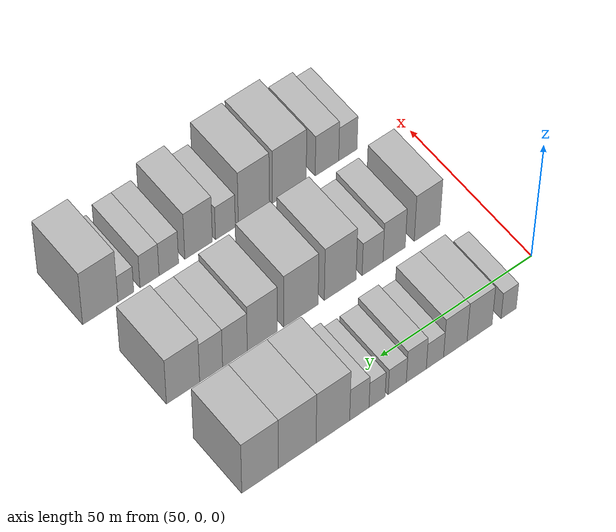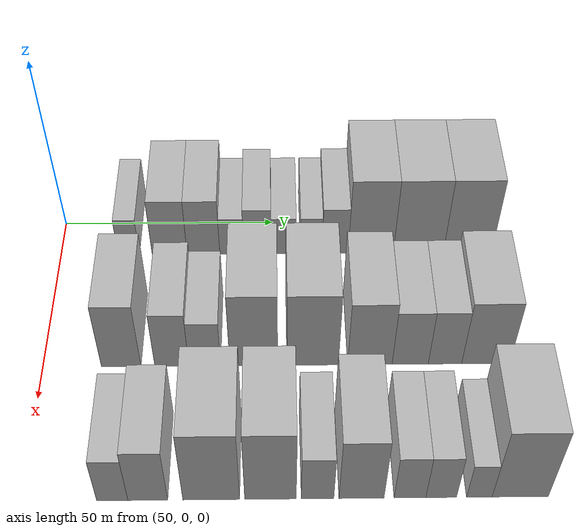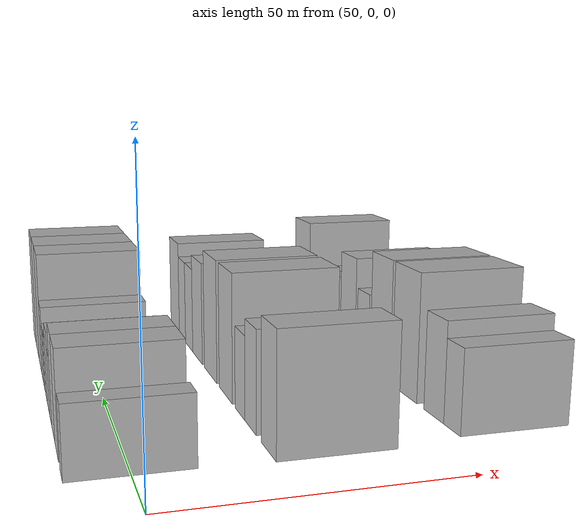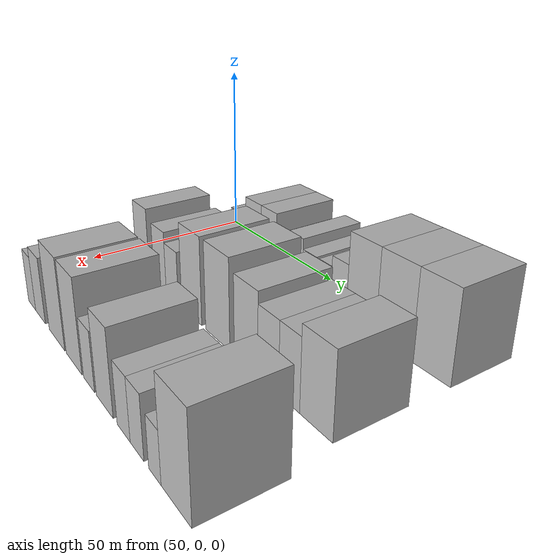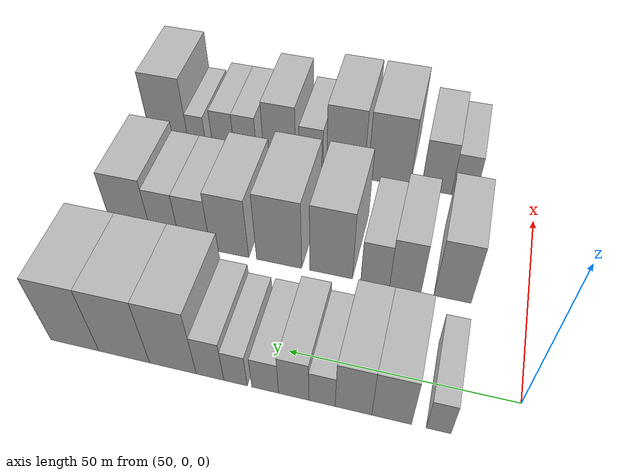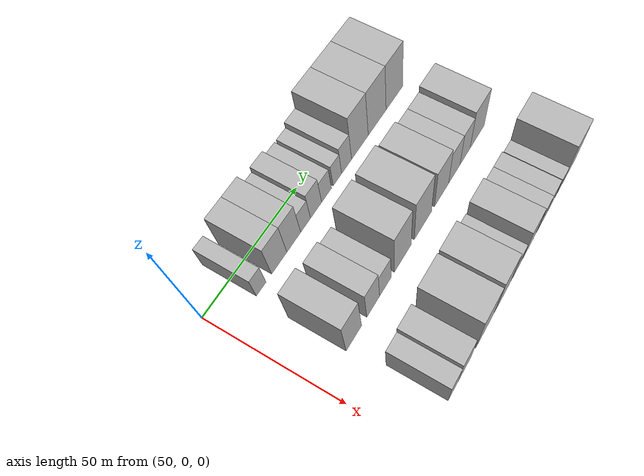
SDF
<sdf version="1.6">
 <world name="default">
  <model name="building_39">
   <static>1</static>
   <pose>50.0000 16.0215 0 0.000000 0.000000 0.000000</pose>
   <link name="link">
    <pose>0 0 6.00 0 0 0</pose>
    <collision name="collision"><geometry><box><size>20.0000 5.0427 12.0000</size></box></geometry></collision>
    <visual name="visual">
     <cast_shadows>0</cast_shadows>
     <geometry><box><size>20.0000 5.0427 12.0000</size></box></geometry>
     <material>
      <script>
       <uri>model://HANNAS_wall/materials/scripts</uri>
       <uri>model://HANNAS_wall/materials/textures</uri>
       <name>vrc/HANNAS_wall</name>
      </script>
     </material>
    </visual>
   </link>
  </model>
  <model name="building_40">
   <static>1</static>
   <pose>50.0000 25.6742 0 0.000000 0.000000 0.000000</pose>
   <link name="link">
    <pose>0 0 9.00 0 0 0</pose>
    <collision name="collision"><geometry><box><size>20.0000 8.2626 18.0000</size></box></geometry></collision>
    <visual name="visual">
     <cast_shadows>0</cast_shadows>
     <geometry><box><size>20.0000 8.2626 18.0000</size></box></geometry>
     <material>
      <script>
       <uri>model://HANNAS_wall/materials/scripts</uri>
       <uri>model://HANNAS_wall/materials/textures</uri>
       <name>vrc/HANNAS_wall</name>
      </script>
     </material>
    </visual>
   </link>
  </model>
  <model name="building_41">
   <static>1</static>
   <pose>50.0000 33.6685 0 0.000000 0.000000 0.000000</pose>
   <link name="link">
    <pose>0 0 9.00 0 0 0</pose>
    <collision name="collision"><geometry><box><size>20.0000 7.7261 18.0000</size></box></geometry></collision>
    <visual name="visual">
     <cast_shadows>0</cast_shadows>
     <geometry><box><size>20.0000 7.7261 18.0000</size></box></geometry>
     <material>
      <script>
       <uri>model://HANNAS_wall/materials/scripts</uri>
       <uri>model://HANNAS_wall/materials/textures</uri>
       <name>vrc/HANNAS_wall</name>
      </script>
     </material>
    </visual>
   </link>
  </model>
  <model name="building_42">
   <static>1</static>
   <pose>50.0000 40.3469 0 0.000000 0.000000 0.000000</pose>
   <link name="link">
    <pose>0 0 6.00 0 0 0</pose>
    <collision name="collision"><geometry><box><size>20.0000 5.6309 12.0000</size></box></geometry></collision>
    <visual name="visual">
     <cast_shadows>0</cast_shadows>
     <geometry><box><size>20.0000 5.6309 12.0000</size></box></geometry>
     <material>
      <script>
       <uri>model://HANNAS_wall/materials/scripts</uri>
       <uri>model://HANNAS_wall/materials/textures</uri>
       <name>vrc/HANNAS_wall</name>
      </script>
     </material>
    </visual>
   </link>
  </model>
  <model name="building_43">
   <static>1</static>
   <pose>50.0000 46.4222 0 0.000000 0.000000 0.000000</pose>
   <link name="link">
    <pose>0 0 7.50 0 0 0</pose>
    <collision name="collision"><geometry><box><size>20.0000 6.5196 15.0000</size></box></geometry></collision>
    <visual name="visual">
     <cast_shadows>0</cast_shadows>
     <geometry><box><size>20.0000 6.5196 15.0000</size></box></geometry>
     <material>
      <script>
       <uri>model://HANNAS_wall/materials/scripts</uri>
       <uri>model://HANNAS_wall/materials/textures</uri>
       <name>vrc/HANNAS_wall</name>
      </script>
     </material>
    </visual>
   </link>
  </model>
  <model name="building_44">
   <static>1</static>
   <pose>50.0000 52.6147 0 0.000000 0.000000 0.000000</pose>
   <link name="link">
    <pose>0 0 6.00 0 0 0</pose>
    <collision name="collision"><geometry><box><size>20.0000 5.8656 12.0000</size></box></geometry></collision>
    <visual name="visual">
     <cast_shadows>0</cast_shadows>
     <geometry><box><size>20.0000 5.8656 12.0000</size></box></geometry>
     <material>
      <script>
       <uri>model://HANNAS_wall/materials/scripts</uri>
       <uri>model://HANNAS_wall/materials/textures</uri>
       <name>vrc/HANNAS_wall</name>
      </script>
     </material>
    </visual>
   </link>
  </model>
  <model name="building_45">
   <static>1</static>
   <pose>50.0000 59.1425 0 0.000000 0.000000 0.000000</pose>
   <link name="link">
    <pose>0 0 6.00 0 0 0</pose>
    <collision name="collision"><geometry><box><size>20.0000 5.1899 12.0000</size></box></geometry></collision>
    <visual name="visual">
     <cast_shadows>0</cast_shadows>
     <geometry><box><size>20.0000 5.1899 12.0000</size></box></geometry>
     <material>
      <script>
       <uri>model://HANNAS_wall/materials/scripts</uri>
       <uri>model://HANNAS_wall/materials/textures</uri>
       <name>vrc/HANNAS_wall</name>
      </script>
     </material>
    </visual>
   </link>
  </model>
  <model name="building_46">
   <static>1</static>
   <pose>50.0000 64.8437 0 0.000000 0.000000 0.000000</pose>
   <link name="link">
    <pose>0 0 7.50 0 0 0</pose>
    <collision name="collision"><geometry><box><size>20.0000 6.2126 15.0000</size></box></geometry></collision>
    <visual name="visual">
     <cast_shadows>0</cast_shadows>
     <geometry><box><size>20.0000 6.2126 15.0000</size></box></geometry>
     <material>
      <script>
       <uri>model://HANNAS_wall/materials/scripts</uri>
       <uri>model://HANNAS_wall/materials/textures</uri>
       <name>vrc/HANNAS_wall</name>
      </script>
     </material>
    </visual>
   </link>
  </model>
  <model name="building_47">
   <static>1</static>
   <pose>50.0000 73.2977 0 0.000000 0.000000 0.000000</pose>
   <link name="link">
    <pose>0 0 12.00 0 0 0</pose>
    <collision name="collision"><geometry><box><size>20.0000 10.6954 24.0000</size></box></geometry></collision>
    <visual name="visual">
     <cast_shadows>0</cast_shadows>
     <geometry><box><size>20.0000 10.6954 24.0000</size></box></geometry>
     <material>
      <script>
       <uri>model://HANNAS_wall/materials/scripts</uri>
       <uri>model://HANNAS_wall/materials/textures</uri>
       <name>vrc/HANNAS_wall</name>
      </script>
     </material>
    </visual>
   </link>
  </model>
  <model name="building_48">
   <static>1</static>
   <pose>50.0000 84.5868 0 0.000000 0.000000 0.000000</pose>
   <link name="link">
    <pose>0 0 12.00 0 0 0</pose>
    <collision name="collision"><geometry><box><size>20.0000 11.8827 24.0000</size></box></geometry></collision>
    <visual name="visual">
     <cast_shadows>0</cast_shadows>
     <geometry><box><size>20.0000 11.8827 24.0000</size></box></geometry>
     <material>
      <script>
       <uri>model://HANNAS_wall/materials/scripts</uri>
       <uri>model://HANNAS_wall/materials/textures</uri>
       <name>vrc/HANNAS_wall</name>
      </script>
     </material>
    </visual>
   </link>
  </model>
  <model name="building_49">
   <static>1</static>
   <pose>50.0000 96.2651 0 0.000000 0.000000 0.000000</pose>
   <link name="link">
    <pose>0 0 12.00 0 0 0</pose>
    <collision name="collision"><geometry><box><size>20.0000 11.4740 24.0000</size></box></geometry></collision>
    <visual name="visual">
     <cast_shadows>0</cast_shadows>
     <geometry><box><size>20.0000 11.4740 24.0000</size></box></geometry>
     <material>
      <script>
       <uri>model://HANNAS_wall/materials/scripts</uri>
       <uri>model://HANNAS_wall/materials/textures</uri>
       <name>vrc/HANNAS_wall</name>
      </script>
     </material>
    </visual>
   </link>
  </model>
  <model name="building_119">
   <static>1</static>
   <pose>82.0000 17.0330 0 0.000000 0.000000 0.000000</pose>
   <link name="link">
    <pose>0 0 10.50 0 0 0</pose>
    <collision name="collision"><geometry><box><size>20.0000 8.5832 21.0000</size></box></geometry></collision>
    <visual name="visual">
     <cast_shadows>0</cast_shadows>
     <geometry><box><size>20.0000 8.5832 21.0000</size></box></geometry>
     <material>
      <script>
       <uri>model://HANNAS_wall/materials/scripts</uri>
       <uri>model://HANNAS_wall/materials/textures</uri>
       <name>vrc/HANNAS_wall</name>
      </script>
     </material>
    </visual>
   </link>
  </model>
  <model name="building_120">
   <static>1</static>
   <pose>82.0000 28.0193 0 0.000000 0.000000 0.000000</pose>
   <link name="link">
    <pose>0 0 9.00 0 0 0</pose>
    <collision name="collision"><geometry><box><size>20.0000 7.3894 18.0000</size></box></geometry></collision>
    <visual name="visual">
     <cast_shadows>0</cast_shadows>
     <geometry><box><size>20.0000 7.3894 18.0000</size></box></geometry>
     <material>
      <script>
       <uri>model://HANNAS_wall/materials/scripts</uri>
       <uri>model://HANNAS_wall/materials/textures</uri>
       <name>vrc/HANNAS_wall</name>
      </script>
     </material>
    </visual>
   </link>
  </model>
  <model name="building_121">
   <static>1</static>
   <pose>82.0000 35.1658 0 0.000000 0.000000 0.000000</pose>
   <link name="link">
    <pose>0 0 7.50 0 0 0</pose>
    <collision name="collision"><geometry><box><size>20.0000 6.9035 15.0000</size></box></geometry></collision>
    <visual name="visual">
     <cast_shadows>0</cast_shadows>
     <geometry><box><size>20.0000 6.9035 15.0000</size></box></geometry>
     <material>
      <script>
       <uri>model://HANNAS_wall/materials/scripts</uri>
       <uri>model://HANNAS_wall/materials/textures</uri>
       <name>vrc/HANNAS_wall</name>
      </script>
     </material>
    </visual>
   </link>
  </model>
  <model name="building_122">
   <static>1</static>
   <pose>82.0000 45.8127 0 0.000000 0.000000 0.000000</pose>
   <link name="link">
    <pose>0 0 12.00 0 0 0</pose>
    <collision name="collision"><geometry><box><size>20.0000 10.3903 24.0000</size></box></geometry></collision>
    <visual name="visual">
     <cast_shadows>0</cast_shadows>
     <geometry><box><size>20.0000 10.3903 24.0000</size></box></geometry>
     <material>
      <script>
       <uri>model://HANNAS_wall/materials/scripts</uri>
       <uri>model://HANNAS_wall/materials/textures</uri>
       <name>vrc/HANNAS_wall</name>
      </script>
     </material>
    </visual>
   </link>
  </model>
  <model name="building_123">
   <static>1</static>
   <pose>82.0000 58.6102 0 0.000000 0.000000 0.000000</pose>
   <link name="link">
    <pose>0 0 12.00 0 0 0</pose>
    <collision name="collision"><geometry><box><size>20.0000 11.2048 24.0000</size></box></geometry></collision>
    <visual name="visual">
     <cast_shadows>0</cast_shadows>
     <geometry><box><size>20.0000 11.2048 24.0000</size></box></geometry>
     <material>
      <script>
       <uri>model://HANNAS_wall/materials/scripts</uri>
       <uri>model://HANNAS_wall/materials/textures</uri>
       <name>vrc/HANNAS_wall</name>
      </script>
     </material>
    </visual>
   </link>
  </model>
  <model name="building_124">
   <static>1</static>
   <pose>82.0000 71.0512 0 0.000000 0.000000 0.000000</pose>
   <link name="link">
    <pose>0 0 10.50 0 0 0</pose>
    <collision name="collision"><geometry><box><size>20.0000 9.6771 21.0000</size></box></geometry></collision>
    <visual name="visual">
     <cast_shadows>0</cast_shadows>
     <geometry><box><size>20.0000 9.6771 21.0000</size></box></geometry>
     <material>
      <script>
       <uri>model://HANNAS_wall/materials/scripts</uri>
       <uri>model://HANNAS_wall/materials/textures</uri>
       <name>vrc/HANNAS_wall</name>
      </script>
     </material>
    </visual>
   </link>
  </model>
  <model name="building_125">
   <static>1</static>
   <pose>82.0000 79.8283 0 0.000000 0.000000 0.000000</pose>
   <link name="link">
    <pose>0 0 9.00 0 0 0</pose>
    <collision name="collision"><geometry><box><size>20.0000 7.8770 18.0000</size></box></geometry></collision>
    <visual name="visual">
     <cast_shadows>0</cast_shadows>
     <geometry><box><size>20.0000 7.8770 18.0000</size></box></geometry>
     <material>
      <script>
       <uri>model://HANNAS_wall/materials/scripts</uri>
       <uri>model://HANNAS_wall/materials/textures</uri>
       <name>vrc/HANNAS_wall</name>
      </script>
     </material>
    </visual>
   </link>
  </model>
  <model name="building_126">
   <static>1</static>
   <pose>82.0000 87.4071 0 0.000000 0.000000 0.000000</pose>
   <link name="link">
    <pose>0 0 9.00 0 0 0</pose>
    <collision name="collision"><geometry><box><size>20.0000 7.2806 18.0000</size></box></geometry></collision>
    <visual name="visual">
     <cast_shadows>0</cast_shadows>
     <geometry><box><size>20.0000 7.2806 18.0000</size></box></geometry>
     <material>
      <script>
       <uri>model://HANNAS_wall/materials/scripts</uri>
       <uri>model://HANNAS_wall/materials/textures</uri>
       <name>vrc/HANNAS_wall</name>
      </script>
     </material>
    </visual>
   </link>
  </model>
  <model name="building_127">
   <static>1</static>
   <pose>82.0000 96.2848 0 0.000000 0.000000 0.000000</pose>
   <link name="link">
    <pose>0 0 10.50 0 0 0</pose>
    <collision name="collision"><geometry><box><size>20.0000 10.4748 21.0000</size></box></geometry></collision>
    <visual name="visual">
     <cast_shadows>0</cast_shadows>
     <geometry><box><size>20.0000 10.4748 21.0000</size></box></geometry>
     <material>
      <script>
       <uri>model://HANNAS_wall/materials/scripts</uri>
       <uri>model://HANNAS_wall/materials/textures</uri>
       <name>vrc/HANNAS_wall</name>
      </script>
     </material>
    </visual>
   </link>
  </model>
  <model name="building_199">
   <static>1</static>
   <pose>114.0000 18.0685 0 0.000000 0.000000 0.000000</pose>
   <link name="link">
    <pose>0 0 7.50 0 0 0</pose>
    <collision name="collision"><geometry><box><size>20.0000 6.1677 15.0000</size></box></geometry></collision>
    <visual name="visual">
     <cast_shadows>0</cast_shadows>
     <geometry><box><size>20.0000 6.1677 15.0000</size></box></geometry>
     <material>
      <script>
       <uri>model://HANNAS_wall/materials/scripts</uri>
       <uri>model://HANNAS_wall/materials/textures</uri>
       <name>vrc/HANNAS_wall</name>
      </script>
     </material>
    </visual>
   </link>
  </model>
  <model name="building_200">
   <static>1</static>
   <pose>114.0000 25.0865 0 0.000000 0.000000 0.000000</pose>
   <link name="link">
    <pose>0 0 9.00 0 0 0</pose>
    <collision name="collision"><geometry><box><size>20.0000 7.8683 18.0000</size></box></geometry></collision>
    <visual name="visual">
     <cast_shadows>0</cast_shadows>
     <geometry><box><size>20.0000 7.8683 18.0000</size></box></geometry>
     <material>
      <script>
       <uri>model://HANNAS_wall/materials/scripts</uri>
       <uri>model://HANNAS_wall/materials/textures</uri>
       <name>vrc/HANNAS_wall</name>
      </script>
     </material>
    </visual>
   </link>
  </model>
  <model name="building_201">
   <static>1</static>
   <pose>114.0000 37.6417 0 0.000000 0.000000 0.000000</pose>
   <link name="link">
    <pose>0 0 12.00 0 0 0</pose>
    <collision name="collision"><geometry><box><size>20.0000 11.2420 24.0000</size></box></geometry></collision>
    <visual name="visual">
     <cast_shadows>0</cast_shadows>
     <geometry><box><size>20.0000 11.2420 24.0000</size></box></geometry>
     <material>
      <script>
       <uri>model://HANNAS_wall/materials/scripts</uri>
       <uri>model://HANNAS_wall/materials/textures</uri>
       <name>vrc/HANNAS_wall</name>
      </script>
     </material>
    </visual>
   </link>
  </model>
  <model name="building_202">
   <static>1</static>
   <pose>114.0000 49.3530 0 0.000000 0.000000 0.000000</pose>
   <link name="link">
    <pose>0 0 12.00 0 0 0</pose>
    <collision name="collision"><geometry><box><size>20.0000 10.1806 24.0000</size></box></geometry></collision>
    <visual name="visual">
     <cast_shadows>0</cast_shadows>
     <geometry><box><size>20.0000 10.1806 24.0000</size></box></geometry>
     <material>
      <script>
       <uri>model://HANNAS_wall/materials/scripts</uri>
       <uri>model://HANNAS_wall/materials/textures</uri>
       <name>vrc/HANNAS_wall</name>
      </script>
     </material>
    </visual>
   </link>
  </model>
  <model name="building_203">
   <static>1</static>
   <pose>114.0000 58.6760 0 0.000000 0.000000 0.000000</pose>
   <link name="link">
    <pose>0 0 7.50 0 0 0</pose>
    <collision name="collision"><geometry><box><size>20.0000 6.4655 15.0000</size></box></geometry></collision>
    <visual name="visual">
     <cast_shadows>0</cast_shadows>
     <geometry><box><size>20.0000 6.4655 15.0000</size></box></geometry>
     <material>
      <script>
       <uri>model://HANNAS_wall/materials/scripts</uri>
       <uri>model://HANNAS_wall/materials/textures</uri>
       <name>vrc/HANNAS_wall</name>
      </script>
     </material>
    </visual>
   </link>
  </model>
  <model name="building_204">
   <static>1</static>
   <pose>114.0000 67.3814 0 0.000000 0.000000 0.000000</pose>
   <link name="link">
    <pose>0 0 10.50 0 0 0</pose>
    <collision name="collision"><geometry><box><size>20.0000 8.9452 21.0000</size></box></geometry></collision>
    <visual name="visual">
     <cast_shadows>0</cast_shadows>
     <geometry><box><size>20.0000 8.9452 21.0000</size></box></geometry>
     <material>
      <script>
       <uri>model://HANNAS_wall/materials/scripts</uri>
       <uri>model://HANNAS_wall/materials/textures</uri>
       <name>vrc/HANNAS_wall</name>
      </script>
     </material>
    </visual>
   </link>
  </model>
  <model name="building_205">
   <static>1</static>
   <pose>114.0000 76.9988 0 0.000000 0.000000 0.000000</pose>
   <link name="link">
    <pose>0 0 7.50 0 0 0</pose>
    <collision name="collision"><geometry><box><size>20.0000 6.2896 15.0000</size></box></geometry></collision>
    <visual name="visual">
     <cast_shadows>0</cast_shadows>
     <geometry><box><size>20.0000 6.2896 15.0000</size></box></geometry>
     <material>
      <script>
       <uri>model://HANNAS_wall/materials/scripts</uri>
       <uri>model://HANNAS_wall/materials/textures</uri>
       <name>vrc/HANNAS_wall</name>
      </script>
     </material>
    </visual>
   </link>
  </model>
  <model name="building_206">
   <static>1</static>
   <pose>114.0000 83.1916 0 0.000000 0.000000 0.000000</pose>
   <link name="link">
    <pose>0 0 7.50 0 0 0</pose>
    <collision name="collision"><geometry><box><size>20.0000 6.0961 15.0000</size></box></geometry></collision>
    <visual name="visual">
     <cast_shadows>0</cast_shadows>
     <geometry><box><size>20.0000 6.0961 15.0000</size></box></geometry>
     <material>
      <script>
       <uri>model://HANNAS_wall/materials/scripts</uri>
       <uri>model://HANNAS_wall/materials/textures</uri>
       <name>vrc/HANNAS_wall</name>
      </script>
     </material>
    </visual>
   </link>
  </model>
  <model name="building_207">
   <static>1</static>
   <pose>114.0000 90.7699 0 0.000000 0.000000 0.000000</pose>
   <link name="link">
    <pose>0 0 6.00 0 0 0</pose>
    <collision name="collision"><geometry><box><size>20.0000 5.0603 12.0000</size></box></geometry></collision>
    <visual name="visual">
     <cast_shadows>0</cast_shadows>
     <geometry><box><size>20.0000 5.0603 12.0000</size></box></geometry>
     <material>
      <script>
       <uri>model://HANNAS_wall/materials/scripts</uri>
       <uri>model://HANNAS_wall/materials/textures</uri>
       <name>vrc/HANNAS_wall</name>
      </script>
     </material>
    </visual>
   </link>
  </model>
  <model name="building_208">
   <static>1</static>
   <pose>114.0000 98.8925 0 0.000000 0.000000 0.000000</pose>
   <link name="link">
    <pose>0 0 12.00 0 0 0</pose>
    <collision name="collision"><geometry><box><size>20.0000 11.1849 24.0000</size></box></geometry></collision>
    <visual name="visual">
     <cast_shadows>0</cast_shadows>
     <geometry><box><size>20.0000 11.1849 24.0000</size></box></geometry>
     <material>
      <script>
       <uri>model://HANNAS_wall/materials/scripts</uri>
       <uri>model://HANNAS_wall/materials/textures</uri>
       <name>vrc/HANNAS_wall</name>
      </script>
     </material>
    </visual>
   </link>
  </model>
 </world>
</sdf>
